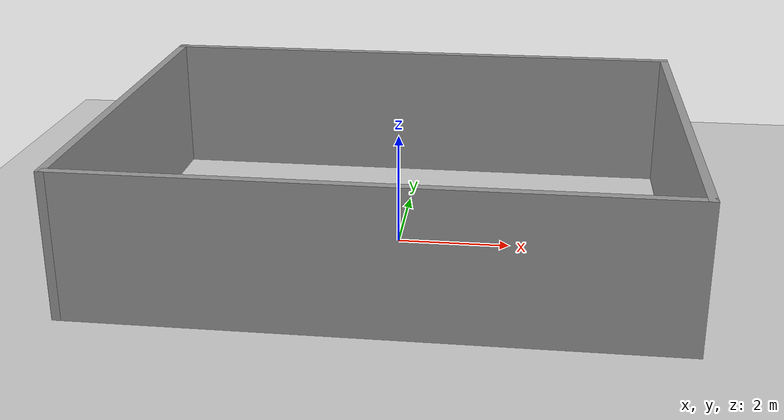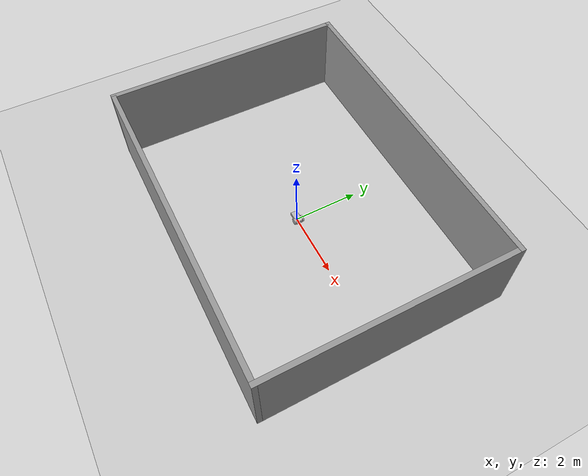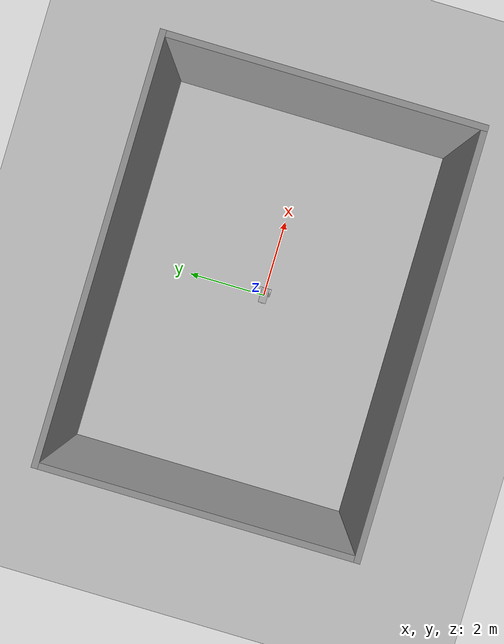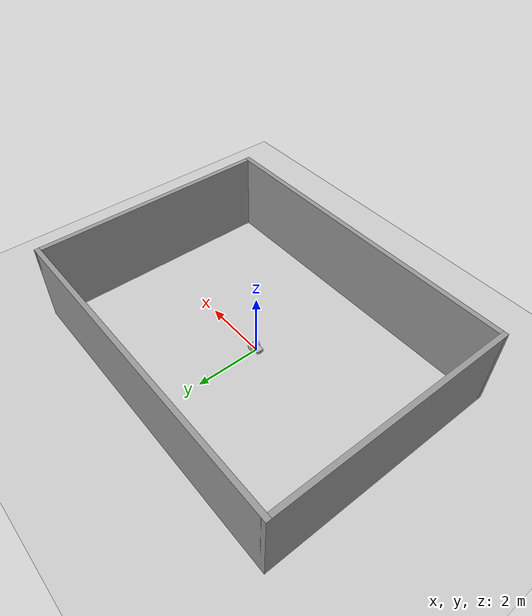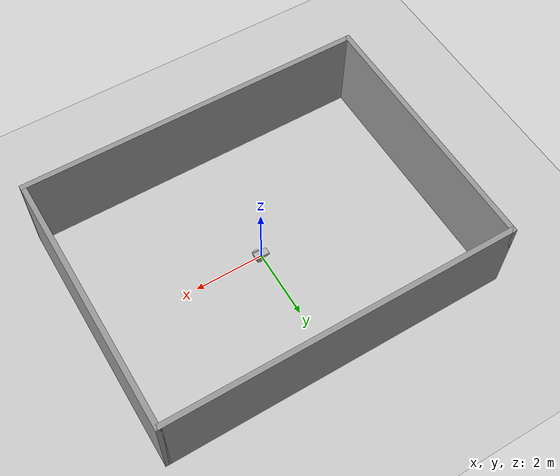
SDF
<?xml version="1.0" ?>
<sdf version="1.5">
  <world name="filter_world">
    <!-- A global light source -->
    <include>
      <uri>model://sun</uri>
    </include>
    <!-- A ground plane -->
    <include>
      <uri>model://ground_plane</uri>
    </include>

    <!-- map -->
    <include>
      <uri>model://Map</uri>
    </include>

    <!-- model -->
    <model name="my_robot">
      <static>false</static>
      <link name='chassis'>
        <pose>0 0 .1 0 0 0</pose>
	<inertial>
	  <mass>0.2</mass>
	  <inertia>
            <ixx>0.00083</ixx>       <!-- for a box: ixx = 0.083 * mass * (y*y + z*z) -->
            <ixy>0.0</ixy>           <!-- for a box: ixy = 0 -->
            <ixz>0.0</ixz>           <!-- for a box: ixz = 0 -->
            <iyy>0.002822</iyy>      <!-- for a box: iyy = 0.083 * mass * (x*x + z*z) -->
            <iyz>0.0</iyz>           <!-- for a box: iyz = 0 -->
            <izz>0.00332</izz>       <!-- for a box: izz = 0.083 * mass * (x*x + y*y) -->
	  </inertia>
	</inertial>
        <collision name='collision'>
          <geometry>
            <box>
              <size>.4 .2 .1</size>
            </box>
          </geometry>
        </collision>
        <visual name='visual'>
          <geometry>
            <box>
              <size>.4 .2 .1</size>
            </box>
          </geometry>
        </visual>
        <collision name='caster_collision'>
          <pose>-0.15 0 -0.05 0 0 0</pose>
          <geometry>
            <sphere>
              <radius>.05</radius>
            </sphere>
          </geometry>
          <surface>
            <friction>
              <ode>
                <mu>0</mu>
                <mu2>0</mu2>
                <slip1>1.0</slip1>
                <slip2>1.0</slip2>
              </ode>
            </friction>
          </surface>
        </collision>
        <visual name='caster_visual'>
          <pose>-0.15 0 -0.05 0 0 0</pose>
          <geometry>
            <sphere>
              <radius>.05</radius>
            </sphere>
          </geometry>
        </visual>
      </link>

      <link name="right_wheel">
        <pose>0.1 0.125 0.1 0 1.5707 -1.5707</pose>
	<inertial>
	  <mass>0.1</mass>
	  <inertia>
            <ixx>0.00026975</ixx>
            <iyy>0.00026975</iyy>
            <izz>0.0005</izz>
            <ixy>0</ixy>
            <ixz>0</ixz>
            <iyz>0</iyz>
	  </inertia>
	</inertial>
        <collision name="collision">
          <geometry>
            <cylinder>
              <radius>.1</radius>
              <length>.05</length>
            </cylinder>
          </geometry>
	  <surface>
            <friction>
              <ode>
                <mu>0.72</mu>
                <mu2>0.72</mu2>
              </ode>
            </friction>
          </surface>
        </collision>
        <visual name="visual">
          <geometry>
            <cylinder>
              <radius>.1</radius>
              <length>.05</length>
            </cylinder>
          </geometry>
        </visual>
      </link>

      <link name="left_wheel">
        <pose>0.1 -0.125 0.1 0 1.5707 -1.5707</pose>
	<inertial>
	  <mass>0.1</mass>
	  <inertia>
            <ixx>0.00026975</ixx>
            <iyy>0.00026975</iyy>
            <izz>0.0005</izz>
            <ixy>0</ixy>
            <ixz>0</ixz>
            <iyz>0</iyz>
	  </inertia>
	</inertial>
        <collision name="collision">
          <geometry>
            <cylinder>
              <radius>.1</radius>
              <length>.05</length>
            </cylinder>
          </geometry>
	  <surface>
            <friction>
              <ode>
                <mu>0.72</mu>
                <mu2>0.72</mu2>
              </ode>
            </friction>
          </surface>
        </collision>
        <visual name="visual">
          <geometry>
            <cylinder>
              <radius>.1</radius>
              <length>.05</length>
            </cylinder>
          </geometry>
        </visual>
      </link>

      <link name='camera_link'>
        <pose>-0.2 0 0.1 0 0 3.14159</pose>
        <inertial>
          <mass>0.01</mass>
          <inertia>
            <ixx>0.000000664</ixx>
            <iyy>0.000000664</iyy>
            <izz>0.000000664</izz>
            <ixy>0</ixy>
            <ixz>0</ixz>
            <iyz>0</iyz>
          </inertia>
        </inertial>
        <collision name='collision'>
          <geometry>
            <box>
	      <size>0.02 0.02 0.02</size>
            </box>
          </geometry>
        </collision>
        <visual name='visual'>
          <geometry>
            <box>
	      <size>0.02 0.02 0.02</size>
            </box>
          </geometry>
        </visual>
        <sensor name='camera_filter' type='depth'>
          <camera name='__default__'>
            <horizontal_fov>1.047</horizontal_fov>
            <image>
	      <width>320</width>
	      <height>240</height>
            </image>
            <clip>
	      <near>0.1</near>
	      <far>100</far>
            </clip>
          </camera>
	  <plugin name="camera_filter_plugin" filename="libgazebo_ros_openni_kinect.so">
            <baseline>0.2</baseline>
            <alwaysOn>true</alwaysOn>
            <updateRate>0.0</updateRate>
            <cameraName>camera_filter</cameraName>
            <imageTopicName>/camera_filter/color/image_raw</imageTopicName>
            <cameraInfoTopicName>/camera_filter/color/camera_info</cameraInfoTopicName>
            <depthImageTopicName>/camera_filter/depth/image_raw</depthImageTopicName>
            <depthImageCameraInfoTopicName>/camera_filter/depth/camera_info</depthImageCameraInfoTopicName>
            <pointCloudTopicName>/camera_filter/depth/points</pointCloudTopicName>
            <frameName>camera_link</frameName>
            <pointCloudCutoff>0.1</pointCloudCutoff>
            <pointCloudCutoffMax>10.0</pointCloudCutoffMax>
            <distortionK1>0</distortionK1>
            <distortionK2>0</distortionK2>
            <distortionK3>0</distortionK3>
            <distortionT1>0</distortionT1>
            <distortionT2>0</distortionT2>
            <CxPrime>0</CxPrime>
            <Cx>0</Cx>
            <Cy>0</Cy>
            <focalLength>0</focalLength>
            <hackBaseline>0</hackBaseline>
          </plugin>
          <always_on>1</always_on>
          <update_rate>30</update_rate>
          <visualize>1</visualize>
        </sensor>
      </link>

      <joint name="camara_joint" type="fixed">
	<child>camera_link</child>
	<parent>chassis</parent>
      </joint>

      <joint type="revolute" name="right_wheel_hinge">
        <pose>0 0 0 0 0 0</pose>
        <child>right_wheel</child>
        <parent>chassis</parent>
        <axis>
          <xyz>0 0 1</xyz>
        </axis>
      </joint>

      <joint type="revolute" name="left_wheel_hinge">
        <pose>0 0 0 0 0 0</pose>
        <child>left_wheel</child>
        <parent>chassis</parent>
        <axis>
          <xyz>0 0 1</xyz>
        </axis>
      </joint>

      <plugin name='control_filter' filename='libfilter_plugin.so'>
	<velocity>10</velocity>
	<nb_particles>10</nb_particles>
      </plugin>
    </model>
  </world>
</sdf>

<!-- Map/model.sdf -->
<sdf version='1.6'>
  <model name='Map'>
    <pose frame=''>-0.051488 0.087006 0 0 -0 0</pose>
    <link name='Wall_0'>
      <collision name='Wall_0_Collision'>
        <geometry>
          <box>
            <size>10 0.15 2.5</size>
          </box>
        </geometry>
        <pose frame=''>0 0 1.25 0 -0 0</pose>
      </collision>
      <visual name='Wall_0_Visual'>
        <pose frame=''>0 0 1.25 0 -0 0</pose>
        <geometry>
          <box>
            <size>10 0.15 2.5</size>
          </box>
        </geometry>
        <material>
          <script>
            <uri>file://media/materials/scripts/gazebo.material</uri>
            <name>Gazebo/Grey</name>
          </script>
          <ambient>1 1 1 1</ambient>
        </material>
        <meta>
          <layer>0</layer>
        </meta>
      </visual>
      <pose frame=''>-0 3.675 0 0 -0 0</pose>
    </link>
    <link name='Wall_1'>
      <collision name='Wall_1_Collision'>
        <geometry>
          <box>
            <size>7.5 0.15 2.5</size>
          </box>
        </geometry>
        <pose frame=''>0 0 1.25 0 -0 0</pose>
      </collision>
      <visual name='Wall_1_Visual'>
        <pose frame=''>0 0 1.25 0 -0 0</pose>
        <geometry>
          <box>
            <size>7.5 0.15 2.5</size>
          </box>
        </geometry>
        <material>
          <script>
            <uri>file://media/materials/scripts/gazebo.material</uri>
            <name>Gazebo/Grey</name>
          </script>
          <ambient>1 1 1 1</ambient>
        </material>
        <meta>
          <layer>0</layer>
        </meta>
      </visual>
      <pose frame=''>4.925 -0 0 0 -0 -1.5708</pose>
    </link>
    <link name='Wall_2'>
      <collision name='Wall_2_Collision'>
        <geometry>
          <box>
            <size>10 0.15 2.5</size>
          </box>
        </geometry>
        <pose frame=''>0 0 1.25 0 -0 0</pose>
      </collision>
      <visual name='Wall_2_Visual'>
        <pose frame=''>0 0 1.25 0 -0 0</pose>
        <geometry>
          <box>
            <size>10 0.15 2.5</size>
          </box>
        </geometry>
        <material>
          <script>
            <uri>file://media/materials/scripts/gazebo.material</uri>
            <name>Gazebo/Grey</name>
          </script>
          <ambient>1 1 1 1</ambient>
        </material>
        <meta>
          <layer>0</layer>
        </meta>
      </visual>
      <pose frame=''>-0 -3.675 0 0 -0 3.14159</pose>
    </link>
    <link name='Wall_3'>
      <collision name='Wall_3_Collision'>
        <geometry>
          <box>
            <size>7.5 0.15 2.5</size>
          </box>
        </geometry>
        <pose frame=''>0 0 1.25 0 -0 0</pose>
      </collision>
      <visual name='Wall_3_Visual'>
        <pose frame=''>0 0 1.25 0 -0 0</pose>
        <geometry>
          <box>
            <size>7.5 0.15 2.5</size>
          </box>
        </geometry>
        <material>
          <script>
            <uri>file://media/materials/scripts/gazebo.material</uri>
            <name>Gazebo/Grey</name>
          </script>
          <ambient>1 1 1 1</ambient>
        </material>
        <meta>
          <layer>0</layer>
        </meta>
      </visual>
      <pose frame=''>-4.925 -0 0 0 -0 1.5708</pose>
    </link>
    <static>1</static>
  </model>
</sdf>
